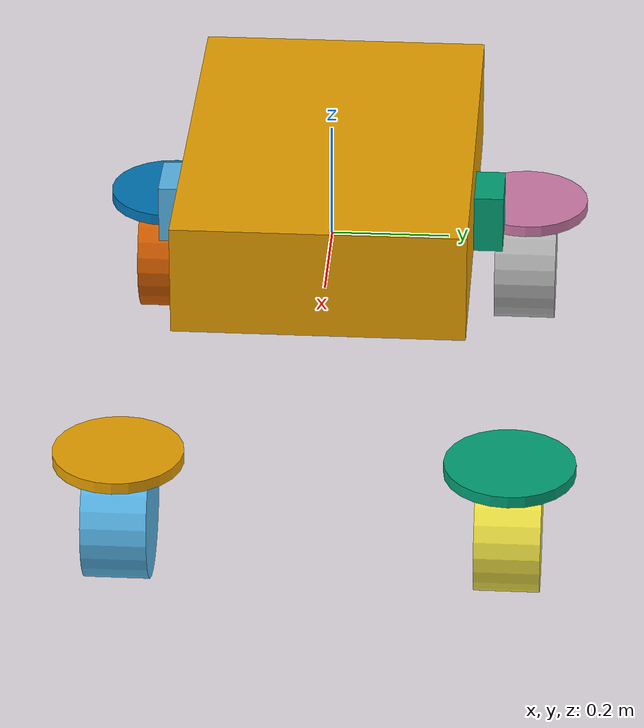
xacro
<?xml version="1.0"?>
<robot xmlns:xacro="http://www.ros.org/wiki/xacro" name="rover">
    <xacro:arg name="initial_positions_file" default="initial_positions.yaml" />

    <!-- Import rover urdf file -->
    <xacro:include filename="$(find mr2_rover_description)/urdf/rover.urdf.xacro" />

    <!-- Import control_xacro -->
    <xacro:include filename="rover.ros2_control.xacro" />

    <xacro:rover_ros2_control name="FakeSystem" initial_positions_file="$(arg initial_positions_file)"/>

</robot>

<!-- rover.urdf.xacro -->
<robot xmlns:xacro="http://www.ros.org/wiki/xacro" name="rover">
  <!-- Include component macros -->
  <xacro:include filename="$(find mr2_rover_description)/urdf/rover_base.xacro"/>
  <xacro:include filename="$(find mr2_rover_description)/urdf/swerve_module.xacro"/>
  <!-- Chassis -->
  <xacro:rover_base/>
  <!-- Four modules -->
  <xacro:swerve_module prefix="fl" parent="left_rocker" xyz=" 0.47 -0.08 -0.18"/>
  <xacro:swerve_module prefix="fr" parent="right_rocker" xyz=" 0.47 0.08 -0.18"/>
  <xacro:swerve_module prefix="rl" parent="left_rocker" xyz="-0.47 -0.08 -0.18"/>
  <xacro:swerve_module prefix="rr" parent="right_rocker" xyz="-0.47 0.08 -0.18"/>
  <!-- ros2_control plugin that loads the TwistToCommands controller -->
  <gazebo>
    <plugin filename="gz_ros2_control-system" name="gz_ros2_control::GazeboSimROS2ControlPlugin">
      <robot_param>robot_description</robot_param>
      <robot_param_node>robot_state_publisher</robot_param_node>
      <parameters>$(find mr2_rover_description)/config/controllers.yaml</parameters>
    </plugin>
  </gazebo>
  <gazebo reference="left_gnss">
    <sensor name="left_gnss_sensor" type="navsat">
      <always_on>1</always_on>
      <update_rate>1</update_rate>
      <visualize>true</visualize>
      <topic>left_gnss/navsat</topic>
      <ignition_frame_id>left_gnss</ignition_frame_id>
    </sensor>
  </gazebo>
  <gazebo reference="right_gnss">
    <sensor name="right_gnss_sensor" type="navsat">
      <always_on>1</always_on>
      <update_rate>1</update_rate>
      <visualize>true</visualize>
      <topic>right_gnss/navsat</topic>
      <ignition_frame_id>right_gnss</ignition_frame_id>
    </sensor>
  </gazebo>
  <gazebo reference="front_camera">
    <sensor name="front_camera_sensor" type="rgbd_camera">
	<update_rate>30</update_rate>
	<always_on>1</always_on>
        <visualize>true</visualize>
	<topic>rgbd_camera</topic>
        <ignition_frame_id>front_camera</ignition_frame_id>
        <camera>
          <horizontal_fov>1.0472</horizontal_fov>
          <lens>
            <intrinsics>
              <!-- fx = fy = width / ( 2 * tan (hfov / 2 ) ) -->
              <fx>554.25469</fx>
              <fy>554.25469</fy>
              <!-- cx = ( width + 1 ) / 2 -->
              <cx>320.5</cx>
              <!-- cy = ( height + 1 ) / 2 -->
              <cy>240.5</cy>
              <s>0</s>
            </intrinsics>
          </lens>
          <distortion>
            <k1>0.0</k1>
            <k2>0.0</k2>
            <k3>0.0</k3>
            <p1>0.0</p1>
            <p2>0.0</p2>
            <center>0.5 0.5</center>
          </distortion>
          <image>
            <width>640</width>
            <height>480</height>
            <format>R8G8B8</format>
          </image>
          <clip>
            <near>0.01</near>
            <far>300</far>
          </clip>
          <depth_camera>
            <clip>
              <near>0.1</near>
              <far>10</far>
            </clip>
          </depth_camera>
          <noise>
            <type>gaussian</type>
            <mean>0</mean>
            <stddev>0.007</stddev>
          </noise>
        </camera>
    </sensor>
  </gazebo>
  <gazebo reference="imu_link">
    <sensor name="imu_sensor" type="imu">
      <always_on>1</always_on>
      <update_rate>30</update_rate>
      <visualize>false</visualize>
      <topic>imu</topic>
      <ignition_frame_id>imu_link</ignition_frame_id>
    </sensor>
  </gazebo>
  <ros2_control name="GazeboSimSystem" type="system">
    <hardware>
      <plugin>gz_ros2_control/GazeboSimSystem</plugin>
    </hardware>

    <!-- Mimic Joint -->
    <joint name="left_rocker_joint">
      <state_interface name="position"/>
      <state_interface name="velocity"/>
      <state_interface name="effort"/>
    </joint>
    <joint name="right_rocker_joint">
      <param name="mimic">left_rocker_joint</param>
      <param name="multiplier">-1</param>
      <state_interface name="position"/>
      <state_interface name="velocity"/>
      <state_interface name="effort"/>
    </joint>

    <!-- Steering position interfaces -->
    <joint name="fl_steering_joint">
      <command_interface name="position"/>
      <state_interface name="position"/>
    </joint>
    <joint name="fr_steering_joint">
      <command_interface name="position"/>
      <state_interface name="position"/>
    </joint>
    <joint name="rl_steering_joint">
      <command_interface name="position"/>
      <state_interface name="position"/>
    </joint>
    <joint name="rr_steering_joint">
      <command_interface name="position"/>
      <state_interface name="position"/>
    </joint>

    <!-- Wheel velocity interfaces -->
    <joint name="fl_wheel_joint">
      <command_interface name="velocity"/>
      <state_interface name="velocity"/>
      <state_interface name="position"/>
    </joint>
    <joint name="fr_wheel_joint">
      <command_interface name="velocity"/>
      <state_interface name="velocity"/>
      <state_interface name="position"/>
    </joint>
    <joint name="rl_wheel_joint">
      <command_interface name="velocity"/>
      <state_interface name="velocity"/>
      <state_interface name="position"/>
    </joint>
    <joint name="rr_wheel_joint">
      <command_interface name="velocity"/>
      <state_interface name="velocity"/>
      <state_interface name="position"/>
    </joint>
  </ros2_control>
</robot>

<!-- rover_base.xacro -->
<robot xmlns:xacro="http://www.ros.org/wiki/xacro">
  <xacro:macro name="rover_base" params="length:=0.73 width:=0.49 height:=0.19 mass:=10 rocker_size:=0.1 rocker_mass:=0.5 joint_effort:=50 joint_vel:=2.0 joint_lim:=1.57 front_camera_pitch:=0.3491">

    <link name="base_link">
      <inertial>
        <mass value="${mass}"/>
        <inertia ixx="${mass*(width*width + height*height)/12.0}" iyy="${mass*(length*length + height*height)/12.0}" izz="${mass*(length*length + width*width)/12.0}" ixy="0" ixz="0" iyz="0"/>
      </inertial>
      <visual>
        <geometry>
          <box size="${length} ${width} ${height}"/>
        </geometry>
        <origin xyz="0 0 ${height/2.0}"/>
      </visual>
      <collision>
        <geometry>
          <box size="${length} ${width} ${height}"/>
        </geometry>
        <origin xyz="0 0 ${height/2.0}"/>
      </collision>
    </link>

    <link name="left_rocker">
      <inertial>
        <origin xyz="0 -${width/2.0} 0"/>
        <mass value="${rocker_mass}"/>
        <inertia ixx="1e-3" ixy="0" ixz="0" iyy="1e-3" iyz="0" izz="1e-3"/>
      </inertial>
      <visual>
        <geometry>
          <box size="${rocker_size} ${rocker_size} ${rocker_size}"/>
        </geometry>
        <origin xyz="0 0 ${rocker_size/2.0}"/>
      </visual>
      <collision>
        <geometry>
          <box size="${rocker_size} ${rocker_size} ${rocker_size}"/>
        </geometry>
        <origin xyz="0 0 ${rocker_size/2.0}"/>
      </collision>
    </link>

    <joint name="left_rocker_joint" type="revolute">
      <parent link="base_link"/>
      <child link="left_rocker"/>
      <origin xyz="0 -${width/2.0} 0" rpy="0 0 0"/>
      <axis xyz="0 1 0"/>
      <dynamics damping="0.1" friction="0.0"/>
      <limit lower="-${joint_lim}" upper="${joint_lim}" effort="${joint_effort}" velocity="${joint_vel}"/>
    </joint>

    <link name="right_rocker">
      <inertial>
        <origin xyz="0 ${width/2.0} 0"/>
        <mass value="${rocker_mass}"/>
        <inertia ixx="1e-3" ixy="0" ixz="0" iyy="1e-3" iyz="0" izz="1e-3"/>
      </inertial>
      <visual>
        <geometry>
          <box size="${rocker_size} ${rocker_size} ${rocker_size}"/>
        </geometry>
        <origin xyz="0 0 ${rocker_size/2.0}"/>
      </visual>
      <collision>
        <geometry>
          <box size="${rocker_size} ${rocker_size} ${rocker_size}"/>
        </geometry>
        <origin xyz="0 0 ${rocker_size/2.0}"/>
      </collision>
    </link>

    <joint name="right_rocker_joint" type="revolute">
      <parent link="base_link"/>
      <child link="right_rocker"/>
      <origin xyz="0 ${width/2.0} 0" rpy="0 0 0"/>
      <axis xyz="0 1 0"/>
      <dynamics damping="0.1" friction="0.0"/>
      <limit lower="-${joint_lim}" upper="${joint_lim}" effort="${joint_effort}" velocity="${joint_vel}"/>
      <mimic joint="left_rocker_joint" multiplier="-1" offset="0"/>
    </joint>

    <joint name="right_rocker_joint_mimic" type="fixed">
      <parent link="base_link" />
      <child link="dummy_link" />
    </joint>

    <link name="dummy_link"/>

    <link name="left_gnss"/>
    <joint name="base_to_left_gnss" type="fixed">
      <origin xyz="0 ${-width/2.0} 0" rpy="0 0 0"/>
      <parent link="base_link"/>
      <child link="left_gnss"/>
    </joint>

    <link name="right_gnss"/>
    <joint name="base_to_right_gnss" type="fixed">
      <origin xyz="0 ${width/2.0} 0" rpy="0 0 0"/>
      <parent link="base_link"/>
      <child link="right_gnss"/>
    </joint>

    <link name="front_camera"/>
    <joint name="base_to_front_camera" type="fixed">
            <origin xyz="${length/2.0} 0 ${height}" rpy="0 ${front_camera_pitch} 0"/>
      <parent link="base_link"/>
      <child link="front_camera"/>
    </joint>

    <!-- IMU mounted at the top of the base box -->
    <link name="imu_link"/>
    <joint name="base_to_imu" type="fixed">
      <origin xyz="0 0 ${height}" rpy="0 0 0"/>
      <parent link="base_link"/>
      <child link="imu_link"/>
    </joint>

  </xacro:macro>
</robot>

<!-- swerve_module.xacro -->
<robot xmlns:xacro="http://www.ros.org/wiki/xacro">
  <xacro:macro name="swerve_module" params="prefix parent xyz">

    <!-- local constants -->
    <xacro:property name="steer_limit" value="3.14"/>
    <xacro:property name="wheel_limit" value="20.0"/>
    <xacro:property name="wheel_radius" value="0.11"/>
    <xacro:property name="wheel_width" value="0.11"/>

    <!-- Steering link -->
    <link name="${prefix}_mount">
      <inertial>
        <mass value="0.5"/>
        <inertia ixx="1e-3" ixy="0" ixz="0" iyy="1e-3" iyz="0" izz="1e-3"/>
      </inertial>
      <visual>
        <geometry>
          <cylinder radius="0.11" length="0.02"/>
        </geometry>
      </visual>
      <collision>
        <geometry>
          <cylinder radius="0.11" length="0.02"/>
        </geometry>
      </collision>
    </link>

    <!-- Wheel link -->
    <link name="${prefix}_wheel">
      <inertial>
        <mass value="0.2"/>
        <inertia ixx="1e-3" ixy="0" ixz="0" iyy="1e-3" iyz="0" izz="1e-3"/>
      </inertial>
      <visual>
        <origin xyz="0 0 0" rpy="1.5708 0 0"/>
        <geometry>
          <cylinder radius="${wheel_radius}" length="${wheel_width}"/>
        </geometry>
        <material name="Rubber"/>
      </visual>
      <collision>
        <origin xyz="0 0 0" rpy="1.5708 0 0"/>
        <geometry>
          <cylinder radius="${wheel_radius}" length="${wheel_width}"/>
        </geometry>
      </collision>
    </link>

    <!-- Steering joint -->
    <joint name="${prefix}_steering_joint" type="continuous">
      <parent link="${parent}"/>
      <child link="${prefix}_mount"/>
      <origin xyz="${xyz}" rpy="0 0 0"/>
      <axis xyz="0 0 1"/>
      <limit effort="5" velocity="${steer_limit}"/>
    </joint>

    <!-- Wheel-spin joint -->
    <joint name="${prefix}_wheel_joint" type="continuous">
      <parent link="${prefix}_mount"/>
      <child link="${prefix}_wheel"/>
      <origin xyz="0 0 -${wheel_radius}" rpy="0 0 0"/>
      <axis xyz="0 1 0"/>
      <limit effort="5" velocity="${wheel_limit}"/>
    </joint>
  </xacro:macro>
</robot>
